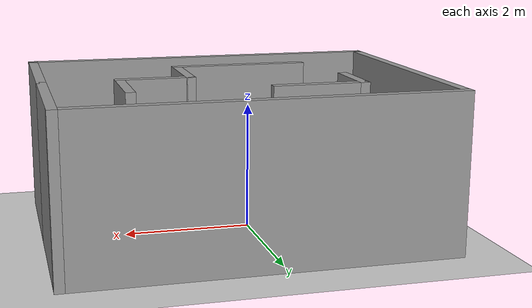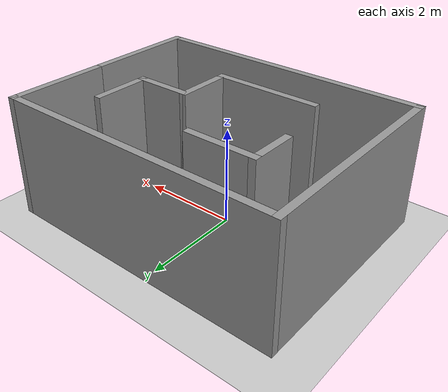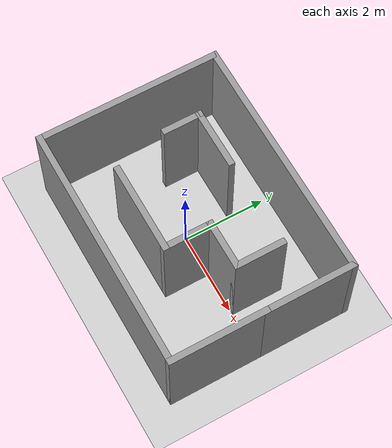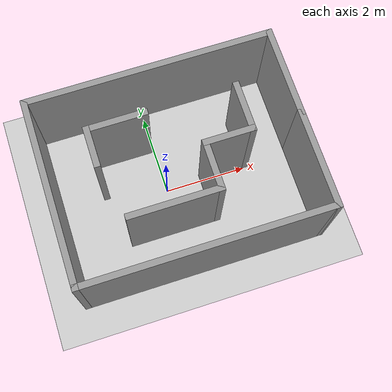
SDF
<sdf version='1.4'>
  <world name='default'>
    <!-- A global light source -->
    <include>
      <uri>model://sun</uri>
    </include>

    <!-- A ground plane -->
    <include>
      <uri>model://ground_plane</uri>
    </include>

    <physics type="ode">
      <real_time_update_rate>1000.0</real_time_update_rate>
      <max_step_size>0.001</max_step_size>
      <real_time_factor>1</real_time_factor>
      <ode>
        <solver>
          <type>quick</type>
          <iters>150</iters>
          <precon_iters>0</precon_iters>
          <sor>1.400000</sor>
          <use_dynamic_moi_rescaling>1</use_dynamic_moi_rescaling>
        </solver>
        <constraints>
          <cfm>0.00001</cfm>
          <erp>0.2</erp>
          <contact_max_correcting_vel>2000.000000</contact_max_correcting_vel>
          <contact_surface_layer>0.01000</contact_surface_layer>
        </constraints>
      </ode>
    </physics>

    <!-- A turtlebot symbol -->
    <include>
      <uri>model://simple_walls</uri>
    </include>

    <scene>
      <ambient>0.4 0.4 0.4 1</ambient>
      <background>0.7 0.7 0.7 1</background>
      <shadows>true</shadows>
    </scene>

    <gui fullscreen='0'>
      <camera name='user_camera'>
        <pose>0.0 0.0 17.0 0 1.5708 0</pose>
        <view_controller>orbit</view_controller>
      </camera>
    </gui>
  </world>
</sdf>

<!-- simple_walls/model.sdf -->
<sdf version='1.6'>
  <model name='simple_walls'>
    <pose frame=''>0.28923 0.044632 0 0 -0 0</pose>
    <link name='Wall_0'>
      <collision name='Wall_0_Collision'>
        <geometry>
          <box>
            <size>2.25 0.15 2.5</size>
          </box>
        </geometry>
        <pose frame=''>0 0 1.25 0 -0 0</pose>
      </collision>
      <visual name='Wall_0_Visual'>
        <pose frame=''>0 0 1.25 0 -0 0</pose>
        <geometry>
          <box>
            <size>2.25 0.15 2.5</size>
          </box>
        </geometry>
        <material>
          <script>
            <uri>file://media/materials/scripts/gazebo.material</uri>
            <name>Gazebo/Grey</name>
          </script>
          <ambient>1 1 1 1</ambient>
        </material>
      </visual>
      <pose frame=''>-0.38923 -1.05463 0 0 -0 0</pose>
    </link>
    <link name='Wall_10'>
      <collision name='Wall_10_Collision'>
        <geometry>
          <box>
            <size>2.4 0.15 2.5</size>
          </box>
        </geometry>
        <pose frame=''>0 0 1.25 0 -0 0</pose>
      </collision>
      <visual name='Wall_10_Visual'>
        <pose frame=''>0 0 1.25 0 -0 0</pose>
        <geometry>
          <box>
            <size>2.4 0.15 2.5</size>
          </box>
        </geometry>
        <material>
          <script>
            <uri>file://media/materials/scripts/gazebo.material</uri>
            <name>Gazebo/Grey</name>
          </script>
          <ambient>1 1 1 1</ambient>
        </material>
      </visual>
      <pose frame=''>2.925 -1.05 0 0 -0 1.5708</pose>
    </link>
    <link name='Wall_13'>
      <collision name='Wall_13_Collision'>
        <geometry>
          <box>
            <size>1 0.15 2.5</size>
          </box>
        </geometry>
        <pose frame=''>0 0 1.25 0 -0 0</pose>
      </collision>
      <visual name='Wall_13_Visual'>
        <pose frame=''>0 0 1.25 0 -0 0</pose>
        <geometry>
          <box>
            <size>1 0.15 2.5</size>
          </box>
        </geometry>
        <material>
          <script>
            <uri>file://media/materials/scripts/gazebo.material</uri>
            <name>Gazebo/Grey</name>
          </script>
          <ambient>1 1 1 1</ambient>
        </material>
      </visual>
      <pose frame=''>-1.76234 0.709881 0 0 -0 1.5708</pose>
    </link>
    <link name='Wall_14'>
      <collision name='Wall_14_Collision'>
        <geometry>
          <box>
            <size>1.5 0.15 2.5</size>
          </box>
        </geometry>
        <pose frame=''>0 0 1.25 0 -0 0</pose>
      </collision>
      <visual name='Wall_14_Visual'>
        <pose frame=''>0 0 1.25 0 -0 0</pose>
        <geometry>
          <box>
            <size>1.5 0.15 2.5</size>
          </box>
        </geometry>
        <material>
          <script>
            <uri>file://media/materials/scripts/gazebo.material</uri>
            <name>Gazebo/Grey</name>
          </script>
          <ambient>1 1 1 1</ambient>
        </material>
      </visual>
      <pose frame=''>-1.08734 1.13488 0 0 -0 0</pose>
    </link>
    <link name='Wall_2'>
      <collision name='Wall_2_Collision'>
        <geometry>
          <box>
            <size>1.25 0.15 2.5</size>
          </box>
        </geometry>
        <pose frame=''>0 0 1.25 0 -0 0</pose>
      </collision>
      <visual name='Wall_2_Visual'>
        <pose frame=''>0 0 1.25 0 -0 0</pose>
        <geometry>
          <box>
            <size>1.25 0.15 2.5</size>
          </box>
        </geometry>
        <material>
          <script>
            <uri>file://media/materials/scripts/gazebo.material</uri>
            <name>Gazebo/Grey</name>
          </script>
          <ambient>1 1 1 1</ambient>
        </material>
      </visual>
      <pose frame=''>0.66077 -0.504632 0 0 -0 1.5708</pose>
    </link>
    <link name='Wall_3'>
      <collision name='Wall_3_Collision'>
        <geometry>
          <box>
            <size>1.25 0.15 2.5</size>
          </box>
        </geometry>
        <pose frame=''>0 0 1.25 0 -0 0</pose>
      </collision>
      <visual name='Wall_3_Visual'>
        <pose frame=''>0 0 1.25 0 -0 0</pose>
        <geometry>
          <box>
            <size>1.25 0.15 2.5</size>
          </box>
        </geometry>
        <material>
          <script>
            <uri>file://media/materials/scripts/gazebo.material</uri>
            <name>Gazebo/Grey</name>
          </script>
          <ambient>1 1 1 1</ambient>
        </material>
      </visual>
      <pose frame=''>1.21077 0.045368 0 0 -0 0</pose>
    </link>
    <link name='Wall_4'>
      <collision name='Wall_4_Collision'>
        <geometry>
          <box>
            <size>1.25 0.15 2.5</size>
          </box>
        </geometry>
        <pose frame=''>0 0 1.25 0 -0 0</pose>
      </collision>
      <visual name='Wall_4_Visual'>
        <pose frame=''>0 0 1.25 0 -0 0</pose>
        <geometry>
          <box>
            <size>1.25 0.15 2.5</size>
          </box>
        </geometry>
        <material>
          <script>
            <uri>file://media/materials/scripts/gazebo.material</uri>
            <name>Gazebo/Grey</name>
          </script>
          <ambient>1 1 1 1</ambient>
        </material>
      </visual>
      <pose frame=''>1.76077 0.595368 0 0 -0 1.5708</pose>
    </link>
    <link name='Wall_6'>
      <collision name='Wall_6_Collision'>
        <geometry>
          <box>
            <size>2.25 0.15 2.5</size>
          </box>
        </geometry>
        <pose frame=''>0 0 1.25 0 -0 0</pose>
      </collision>
      <visual name='Wall_6_Visual'>
        <pose frame=''>0 0 1.25 0 -0 0</pose>
        <geometry>
          <box>
            <size>2.25 0.15 2.5</size>
          </box>
        </geometry>
        <material>
          <script>
            <uri>file://media/materials/scripts/gazebo.material</uri>
            <name>Gazebo/Grey</name>
          </script>
          <ambient>1 1 1 1</ambient>
        </material>
      </visual>
      <pose frame=''>2.925 1.125 0 0 -0 1.5708</pose>
    </link>
    <link name='Wall_7'>
      <collision name='Wall_7_Collision'>
        <geometry>
          <box>
            <size>6 0.15 2.5</size>
          </box>
        </geometry>
        <pose frame=''>0 0 1.25 0 -0 0</pose>
      </collision>
      <visual name='Wall_7_Visual'>
        <pose frame=''>0 0 1.25 0 -0 0</pose>
        <geometry>
          <box>
            <size>6 0.15 2.5</size>
          </box>
        </geometry>
        <material>
          <script>
            <uri>file://media/materials/scripts/gazebo.material</uri>
            <name>Gazebo/Grey</name>
          </script>
          <ambient>1 1 1 1</ambient>
        </material>
      </visual>
      <pose frame=''>0 2.175 0 0 -0 3.14159</pose>
    </link>
    <link name='Wall_8'>
      <collision name='Wall_8_Collision'>
        <geometry>
          <box>
            <size>4.5 0.15 2.5</size>
          </box>
        </geometry>
        <pose frame=''>0 0 1.25 0 -0 0</pose>
      </collision>
      <visual name='Wall_8_Visual'>
        <pose frame=''>0 0 1.25 0 -0 0</pose>
        <geometry>
          <box>
            <size>4.5 0.15 2.5</size>
          </box>
        </geometry>
        <material>
          <script>
            <uri>file://media/materials/scripts/gazebo.material</uri>
            <name>Gazebo/Grey</name>
          </script>
          <ambient>1 1 1 1</ambient>
        </material>
      </visual>
      <pose frame=''>-2.925 0 0 0 0 -1.5708</pose>
    </link>
    <link name='Wall_9'>
      <collision name='Wall_9_Collision'>
        <geometry>
          <box>
            <size>6 0.15 2.5</size>
          </box>
        </geometry>
        <pose frame=''>0 0 1.25 0 -0 0</pose>
      </collision>
      <visual name='Wall_9_Visual'>
        <pose frame=''>0 0 1.25 0 -0 0</pose>
        <geometry>
          <box>
            <size>6 0.15 2.5</size>
          </box>
        </geometry>
        <material>
          <script>
            <uri>file://media/materials/scripts/gazebo.material</uri>
            <name>Gazebo/Grey</name>
          </script>
          <ambient>1 1 1 1</ambient>
        </material>
      </visual>
      <pose frame=''>0 -2.175 0 0 -0 0</pose>
    </link>
    <static>1</static>
  </model>
</sdf>
